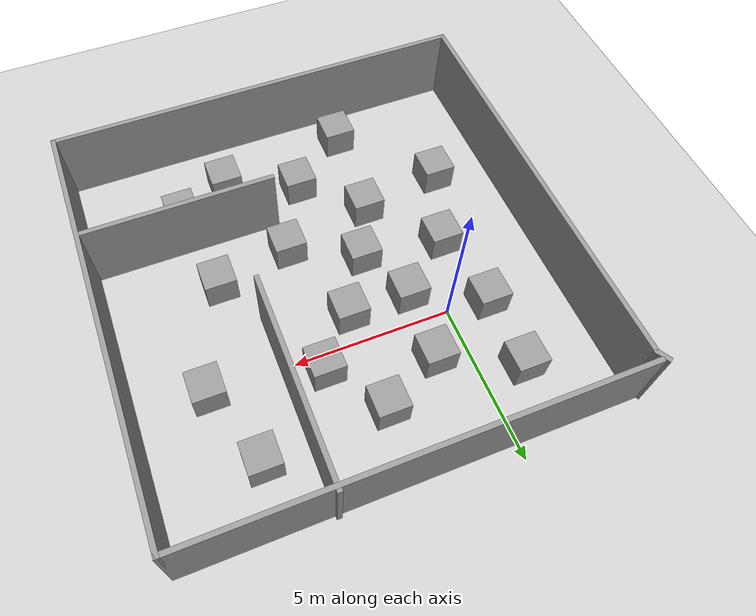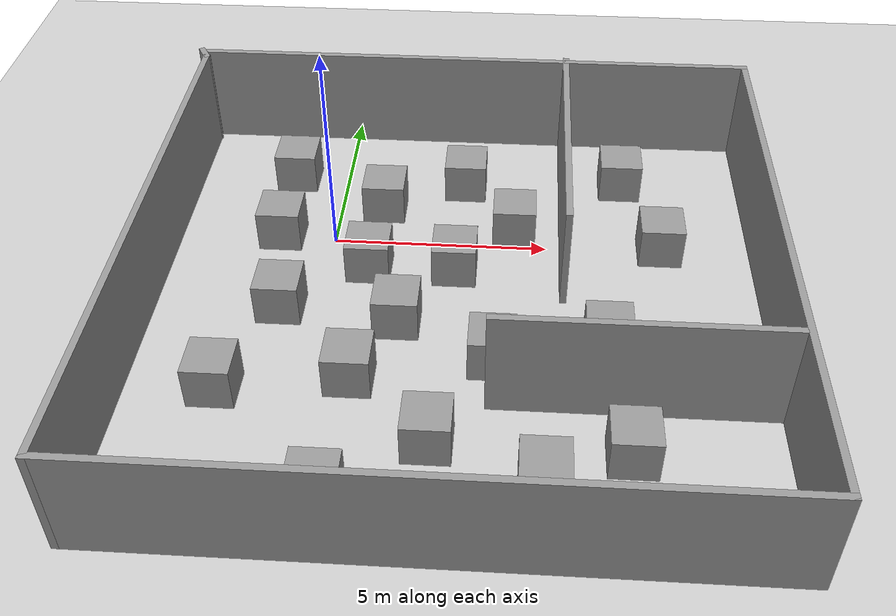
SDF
<sdf version="1.7">
 <world name="default">
  <light name="sun" type="directional">
   <pose>0 0 10 0 -0 0</pose>
   <diffuse>0.8 0.8 0.8 1</diffuse>
   <specular>0.2 0.2 0.2 1</specular>
   <attenuation>
    <range>1000</range>
    <constant>0.9</constant>
    <linear>0.01</linear>
    <quadratic>0.001</quadratic>
   </attenuation>
   <direction>-0.5 0.1 -0.9</direction>
   <spot><inner_angle>0</inner_angle><outer_angle>0</outer_angle><falloff>0</falloff></spot>
  </light>
  <model name="ground_plane">
   <static>1</static>
   <link name="link">
    <collision name="collision">
     <geometry><plane><normal>0 0 1</normal><size>100 100</size></plane></geometry>
     <surface><friction><ode><mu>100</mu><mu2>50</mu2></ode></friction></surface>
    </collision>
    <visual name="visual">
     <cast_shadows>0</cast_shadows>
     <geometry><plane><normal>0 0 1</normal><size>100 100</size></plane></geometry>
     <material>
      <script><uri>file://media/materials/scripts/gazebo.material</uri><name>Gazebo/Grey</name></script>
     </material>
    </visual>
   </link>
  </model>
  <gravity>0 0 -9.8</gravity>
  <magnetic_field>6e-06 2.3e-05 -4.2e-05</magnetic_field>
  <atmosphere type="adiabatic"/>
  <physics type="ode">
   <max_step_size>0.001</max_step_size>
   <real_time_factor>1</real_time_factor>
   <real_time_update_rate>1000</real_time_update_rate>
  </physics>
  <scene><ambient>0.4 0.4 0.4 1</ambient><background>0.7 0.7 0.7 1</background><shadows>1</shadows></scene>
  <spherical_coordinates>
   <surface_model>EARTH_WGS84</surface_model>
   <latitude_deg>0</latitude_deg>
   <longitude_deg>0</longitude_deg>
   <elevation>0</elevation>
   <heading_deg>0</heading_deg>
  </spherical_coordinates>
  <model name="maze">
   <pose>2.92862 -2.17768 0 0 -0 0</pose>
   <link name="Wall_10">
    <collision name="Wall_10_Collision">
     <geometry><box><size>13.25 0.15 2.5</size></box></geometry>
     <pose>0 0 1.25 0 -0 0</pose>
    </collision>
    <visual name="Wall_10_Visual">
     <pose>0 0 1.25 0 -0 0</pose>
     <geometry><box><size>13.25 0.15 2.5</size></box></geometry>
     <material>
      <script><uri>file://media/materials/scripts/gazebo.material</uri><name>Gazebo/Grey</name></script>
      <ambient>1 1 1 1</ambient>
     </material>
     <meta><layer>0</layer></meta>
    </visual>
    <pose>-6.69878 -0.1782 0 0 -0 1.5708</pose>
   </link>
   <link name="Wall_11">
    <collision name="Wall_11_Collision">
     <geometry><box><size>0.5 0.15 2.5</size></box></geometry>
     <pose>0 0 1.25 0 -0 0</pose>
    </collision>
    <visual name="Wall_11_Visual">
     <pose>0 0 1.25 0 -0 0</pose>
     <geometry><box><size>0.5 0.15 2.5</size></box></geometry>
     <material>
      <script><uri>file://media/materials/scripts/gazebo.material</uri><name>Gazebo/Grey</name></script>
      <ambient>1 1 1 1</ambient>
     </material>
     <meta><layer>0</layer></meta>
    </visual>
    <pose>-6.78627 6.52335 0 0 -0 2.0944</pose>
   </link>
   <link name="Wall_13">
    <collision name="Wall_13_Collision">
     <geometry><box><size>6.5 0.15 2.5</size></box></geometry>
     <pose>0 0 1.25 0 -0 0</pose>
    </collision>
    <visual name="Wall_13_Visual">
     <pose>0 0 1.25 0 -0 0</pose>
     <geometry><box><size>6.5 0.15 2.5</size></box></geometry>
     <material>
      <script><uri>file://media/materials/scripts/gazebo.material</uri><name>Gazebo/Grey</name></script>
      <ambient>1 1 1 1</ambient>
     </material>
     <meta><layer>0</layer></meta>
    </visual>
    <pose>2.45169 3.5532 0 0 -0 -1.5708</pose>
   </link>
   <link name="Wall_16">
    <collision name="Wall_16_Collision">
     <geometry><box><size>6 0.15 2.5</size></box></geometry>
     <pose>0 0 1.25 0 -0 0</pose>
    </collision>
    <visual name="Wall_16_Visual">
     <pose>0 0 1.25 0 -0 0</pose>
     <geometry><box><size>6 0.15 2.5</size></box></geometry>
     <material>
      <script><uri>file://media/materials/scripts/gazebo.material</uri><name>Gazebo/Grey</name></script>
      <ambient>1 1 1 1</ambient>
     </material>
     <meta><layer>0</layer></meta>
    </visual>
    <pose>3.83593 -2.90107 0 0 -0 3.14159</pose>
   </link>
   <link name="Wall_7">
    <collision name="Wall_7_Collision">
     <geometry><box><size>13.75 0.15 2.5</size></box></geometry>
     <pose>0 0 1.25 0 -0 0</pose>
    </collision>
    <visual name="Wall_7_Visual">
     <pose>0 0 1.25 0 -0 0</pose>
     <geometry><box><size>13.75 0.15 2.5</size></box></geometry>
     <material>
      <script><uri>file://media/materials/scripts/gazebo.material</uri><name>Gazebo/Grey</name></script>
      <ambient>1 1 1 1</ambient>
     </material>
     <meta><layer>0</layer></meta>
    </visual>
    <pose>0.101225 6.6218 0 0 -0 0</pose>
   </link>
   <link name="Wall_8">
    <collision name="Wall_8_Collision">
     <geometry><box><size>13.5 0.15 2.5</size></box></geometry>
     <pose>0 0 1.25 0 -0 0</pose>
    </collision>
    <visual name="Wall_8_Visual">
     <pose>0 0 1.25 0 -0 0</pose>
     <geometry><box><size>13.5 0.15 2.5</size></box></geometry>
     <material>
      <script><uri>file://media/materials/scripts/gazebo.material</uri><name>Gazebo/Grey</name></script>
      <ambient>1 1 1 1</ambient>
     </material>
     <meta><layer>0</layer></meta>
    </visual>
    <pose>6.90123 -0.0532 0 0 -0 -1.5708</pose>
   </link>
   <link name="Wall_9">
    <collision name="Wall_9_Collision">
     <geometry><box><size>13.75 0.15 2.5</size></box></geometry>
     <pose>0 0 1.25 0 -0 0</pose>
    </collision>
    <visual name="Wall_9_Visual">
     <pose>0 0 1.25 0 -0 0</pose>
     <geometry><box><size>13.75 0.15 2.5</size></box></geometry>
     <material>
      <script><uri>file://media/materials/scripts/gazebo.material</uri><name>Gazebo/Grey</name></script>
      <ambient>1 1 1 1</ambient>
     </material>
     <meta><layer>0</layer></meta>
    </visual>
    <pose>0.101225 -6.7282 0 0 -0 3.14159</pose>
   </link>
   <static>1</static>
  </model>
  <model name="unit_box">
   <pose>1.06233 1.29017 0.499995 0 1e-05 0</pose>
   <link name="link">
    <inertial>
     <mass>10</mass>
     <inertia>
      <ixx>0.166667</ixx>
      <ixy>0</ixy>
      <ixz>0</ixz>
      <iyy>0.166667</iyy>
      <iyz>0</iyz>
      <izz>0.166667</izz>
     </inertia>
    </inertial>
    <collision name="collision"><geometry><box><size>1 1 1</size></box></geometry></collision>
    <visual name="visual">
     <geometry><box><size>1 1 1</size></box></geometry>
     <material>
      <script><name>Gazebo/Grey</name><uri>file://media/materials/scripts/gazebo.material</uri></script>
     </material>
    </visual>
   </link>
  </model>
  <model name="unit_box_0">
   <pose>1.75455 -2.7656 0.499995 0 -1e-05 0</pose>
   <link name="link">
    <inertial>
     <mass>10</mass>
     <inertia>
      <ixx>0.166667</ixx>
      <ixy>0</ixy>
      <ixz>0</ixz>
      <iyy>0.166667</iyy>
      <iyz>0</iyz>
      <izz>0.166667</izz>
     </inertia>
    </inertial>
    <collision name="collision"><geometry><box><size>1 1 1</size></box></geometry></collision>
    <visual name="visual">
     <geometry><box><size>1 1 1</size></box></geometry>
     <material>
      <script><name>Gazebo/Grey</name><uri>file://media/materials/scripts/gazebo.material</uri></script>
     </material>
    </visual>
   </link>
  </model>
  <model name="unit_box_1">
   <pose>2.90182 -0.964119 0.499995 0 -1e-05 0</pose>
   <link name="link">
    <inertial>
     <mass>10</mass>
     <inertia>
      <ixx>0.166667</ixx>
      <ixy>0</ixy>
      <ixz>0</ixz>
      <iyy>0.166667</iyy>
      <iyz>0</iyz>
      <izz>0.166667</izz>
     </inertia>
    </inertial>
    <collision name="collision"><geometry><box><size>1 1 1</size></box></geometry></collision>
    <visual name="visual">
     <geometry><box><size>1 1 1</size></box></geometry>
     <material>
      <script><name>Gazebo/Grey</name><uri>file://media/materials/scripts/gazebo.material</uri></script>
     </material>
    </visual>
   </link>
  </model>
  <model name="unit_box_2">
   <pose>-1.25622 2.42374 0.499995 0 1e-05 0</pose>
   <link name="link">
    <inertial>
     <mass>10</mass>
     <inertia>
      <ixx>0.166667</ixx>
      <ixy>0</ixy>
      <ixz>0</ixz>
      <iyy>0.166667</iyy>
      <iyz>0</iyz>
      <izz>0.166667</izz>
     </inertia>
    </inertial>
    <collision name="collision"><geometry><box><size>1 1 1</size></box></geometry></collision>
    <visual name="visual">
     <geometry><box><size>1 1 1</size></box></geometry>
     <material>
      <script><name>Gazebo/Grey</name><uri>file://media/materials/scripts/gazebo.material</uri></script>
     </material>
    </visual>
   </link>
  </model>
  <model name="unit_box_3">
   <pose>0.940977 -4.51753 0.499995 0 -1e-05 0</pose>
   <link name="link">
    <inertial>
     <mass>10</mass>
     <inertia>
      <ixx>0.166667</ixx>
      <ixy>0</ixy>
      <ixz>0</ixz>
      <iyy>0.166667</iyy>
      <iyz>0</iyz>
      <izz>0.166667</izz>
     </inertia>
    </inertial>
    <collision name="collision"><geometry><box><size>1 1 1</size></box></geometry></collision>
    <visual name="visual">
     <geometry><box><size>1 1 1</size></box></geometry>
     <material>
      <script><name>Gazebo/Grey</name><uri>file://media/materials/scripts/gazebo.material</uri></script>
     </material>
    </visual>
   </link>
  </model>
  <model name="unit_box_4">
   <pose>-1.79002 -4.95829 0.499995 0 1e-05 0</pose>
   <link name="link">
    <inertial>
     <mass>10</mass>
     <inertia>
      <ixx>0.166667</ixx>
      <ixy>0</ixy>
      <ixz>0</ixz>
      <iyy>0.166667</iyy>
      <iyz>0</iyz>
      <izz>0.166667</izz>
     </inertia>
    </inertial>
    <collision name="collision"><geometry><box><size>1 1 1</size></box></geometry></collision>
    <visual name="visual">
     <geometry><box><size>1 1 1</size></box></geometry>
     <material>
      <script><name>Gazebo/Grey</name><uri>file://media/materials/scripts/gazebo.material</uri></script>
     </material>
    </visual>
   </link>
  </model>
  <model name="unit_box_5">
   <pose>0.727823 -7.68964 0.499995 -1e-05 0 0</pose>
   <link name="link">
    <inertial>
     <mass>10</mass>
     <inertia>
      <ixx>0.166667</ixx>
      <ixy>0</ixy>
      <ixz>0</ixz>
      <iyy>0.166667</iyy>
      <iyz>0</iyz>
      <izz>0.166667</izz>
     </inertia>
    </inertial>
    <collision name="collision"><geometry><box><size>1 1 1</size></box></geometry></collision>
    <visual name="visual">
     <geometry><box><size>1 1 1</size></box></geometry>
     <material>
      <script><name>Gazebo/Grey</name><uri>file://media/materials/scripts/gazebo.material</uri></script>
     </material>
    </visual>
   </link>
  </model>
  <model name="unit_box_6">
   <pose>6.80882 2.49878 0.499995 1e-05 -0 0</pose>
   <link name="link">
    <inertial>
     <mass>10</mass>
     <inertia>
      <ixx>0.166667</ixx>
      <ixy>0</ixy>
      <ixz>0</ixz>
      <iyy>0.166667</iyy>
      <iyz>0</iyz>
      <izz>0.166667</izz>
     </inertia>
    </inertial>
    <collision name="collision"><geometry><box><size>1 1 1</size></box></geometry></collision>
    <visual name="visual">
     <geometry><box><size>1 1 1</size></box></geometry>
     <material>
      <script><name>Gazebo/Grey</name><uri>file://media/materials/scripts/gazebo.material</uri></script>
     </material>
    </visual>
   </link>
  </model>
  <model name="unit_box_7">
   <pose>7.64222 0.016976 0.499995 0 1e-05 0</pose>
   <link name="link">
    <inertial>
     <mass>10</mass>
     <inertia>
      <ixx>0.166667</ixx>
      <ixy>0</ixy>
      <ixz>0</ixz>
      <iyy>0.166667</iyy>
      <iyz>0</iyz>
      <izz>0.166667</izz>
     </inertia>
    </inertial>
    <collision name="collision"><geometry><box><size>1 1 1</size></box></geometry></collision>
    <visual name="visual">
     <geometry><box><size>1 1 1</size></box></geometry>
     <material>
      <script><name>Gazebo/Grey</name><uri>file://media/materials/scripts/gazebo.material</uri></script>
     </material>
    </visual>
   </link>
  </model>
  <model name="unit_box_8">
   <pose>6.30567 -3.33697 0.499995 1e-05 -0 0</pose>
   <link name="link">
    <inertial>
     <mass>10</mass>
     <inertia>
      <ixx>0.166667</ixx>
      <ixy>0</ixy>
      <ixz>0</ixz>
      <iyy>0.166667</iyy>
      <iyz>0</iyz>
      <izz>0.166667</izz>
     </inertia>
    </inertial>
    <collision name="collision"><geometry><box><size>1 1 1</size></box></geometry></collision>
    <visual name="visual">
     <geometry><box><size>1 1 1</size></box></geometry>
     <material>
      <script><name>Gazebo/Grey</name><uri>file://media/materials/scripts/gazebo.material</uri></script>
     </material>
    </visual>
   </link>
  </model>
  <model name="unit_box_9">
   <pose>2.69483 -6.16784 0.499995 1e-05 -0 0</pose>
   <link name="link">
    <inertial>
     <mass>10</mass>
     <inertia>
      <ixx>0.166667</ixx>
      <ixy>0</ixy>
      <ixz>0</ixz>
      <iyy>0.166667</iyy>
      <iyz>0</iyz>
      <izz>0.166667</izz>
     </inertia>
    </inertial>
    <collision name="collision"><geometry><box><size>1 1 1</size></box></geometry></collision>
    <visual name="visual">
     <geometry><box><size>1 1 1</size></box></geometry>
     <material>
      <script><name>Gazebo/Grey</name><uri>file://media/materials/scripts/gazebo.material</uri></script>
     </material>
    </visual>
   </link>
  </model>
  <model name="unit_box_10">
   <pose>4.97518 -7.13786 0.499995 -1e-05 -0 -0</pose>
   <link name="link">
    <inertial>
     <mass>10</mass>
     <inertia>
      <ixx>0.166667</ixx>
      <ixy>0</ixy>
      <ixz>0</ixz>
      <iyy>0.166667</iyy>
      <iyz>0</iyz>
      <izz>0.166667</izz>
     </inertia>
    </inertial>
    <collision name="collision"><geometry><box><size>1 1 1</size></box></geometry></collision>
    <visual name="visual">
     <geometry><box><size>1 1 1</size></box></geometry>
     <material>
      <script><name>Gazebo/Grey</name><uri>file://media/materials/scripts/gazebo.material</uri></script>
     </material>
    </visual>
   </link>
  </model>
  <model name="unit_box_11">
   <pose>-0.864887 -2.43472 0.499995 1e-05 -0 0</pose>
   <link name="link">
    <inertial>
     <mass>10</mass>
     <inertia>
      <ixx>0.166667</ixx>
      <ixy>0</ixy>
      <ixz>0</ixz>
      <iyy>0.166667</iyy>
      <iyz>0</iyz>
      <izz>0.166667</izz>
     </inertia>
    </inertial>
    <collision name="collision"><geometry><box><size>1 1 1</size></box></geometry></collision>
    <visual name="visual">
     <geometry><box><size>1 1 1</size></box></geometry>
     <material>
      <script><name>Gazebo/Grey</name><uri>file://media/materials/scripts/gazebo.material</uri></script>
     </material>
    </visual>
   </link>
  </model>
  <model name="unit_box_12">
   <pose>-1.27029 0.097992 0.499995 1e-05 -0 0</pose>
   <link name="link">
    <inertial>
     <mass>10</mass>
     <inertia>
      <ixx>0.166667</ixx>
      <ixy>0</ixy>
      <ixz>0</ixz>
      <iyy>0.166667</iyy>
      <iyz>0</iyz>
      <izz>0.166667</izz>
     </inertia>
    </inertial>
    <collision name="collision"><geometry><box><size>1 1 1</size></box></geometry></collision>
    <visual name="visual">
     <geometry><box><size>1 1 1</size></box></geometry>
     <material>
      <script><name>Gazebo/Grey</name><uri>file://media/materials/scripts/gazebo.material</uri></script>
     </material>
    </visual>
   </link>
  </model>
  <model name="unit_box_13">
   <pose>0.932032 -0.963871 0.499995 -1e-05 -0 -0</pose>
   <link name="link">
    <inertial>
     <mass>10</mass>
     <inertia>
      <ixx>0.166667</ixx>
      <ixy>0</ixy>
      <ixz>0</ixz>
      <iyy>0.166667</iyy>
      <iyz>0</iyz>
      <izz>0.166667</izz>
     </inertia>
    </inertial>
    <collision name="collision"><geometry><box><size>1 1 1</size></box></geometry></collision>
    <visual name="visual">
     <geometry><box><size>1 1 1</size></box></geometry>
     <material>
      <script><name>Gazebo/Grey</name><uri>file://media/materials/scripts/gazebo.material</uri></script>
     </material>
    </visual>
   </link>
  </model>
  <model name="unit_box_14">
   <pose>3.86517 -3.85624 0.499995 0 1e-05 0</pose>
   <link name="link">
    <inertial>
     <mass>10</mass>
     <inertia>
      <ixx>0.166667</ixx>
      <ixy>0</ixy>
      <ixz>0</ixz>
      <iyy>0.166667</iyy>
      <iyz>0</iyz>
      <izz>0.166667</izz>
     </inertia>
    </inertial>
    <collision name="collision"><geometry><box><size>1 1 1</size></box></geometry></collision>
    <visual name="visual">
     <geometry><box><size>1 1 1</size></box></geometry>
     <material>
      <script><name>Gazebo/Grey</name><uri>file://media/materials/scripts/gazebo.material</uri></script>
     </material>
    </visual>
   </link>
  </model>
  <model name="unit_box_15">
   <pose>6.676 -6.28011 0.499995 0 1e-05 0</pose>
   <link name="link">
    <inertial>
     <mass>10</mass>
     <inertia>
      <ixx>0.166667</ixx>
      <ixy>0</ixy>
      <ixz>0</ixz>
      <iyy>0.166667</iyy>
      <iyz>0</iyz>
      <izz>0.166667</izz>
     </inertia>
    </inertial>
    <collision name="collision"><geometry><box><size>1 1 1</size></box></geometry></collision>
    <visual name="visual">
     <geometry><box><size>1 1 1</size></box></geometry>
     <material>
      <script><name>Gazebo/Grey</name><uri>file://media/materials/scripts/gazebo.material</uri></script>
     </material>
    </visual>
   </link>
  </model>
  <model name="unit_box_16">
   <pose>2.98924 2.25431 0.499995 -1e-05 -0 0</pose>
   <link name="link">
    <inertial>
     <mass>10</mass>
     <inertia>
      <ixx>0.166667</ixx>
      <ixy>0</ixy>
      <ixz>0</ixz>
      <iyy>0.166667</iyy>
      <iyz>0</iyz>
      <izz>0.166667</izz>
     </inertia>
    </inertial>
    <collision name="collision"><geometry><box><size>1 1 1</size></box></geometry></collision>
    <visual name="visual">
     <geometry><box><size>1 1 1</size></box></geometry>
     <material>
      <script><name>Gazebo/Grey</name><uri>file://media/materials/scripts/gazebo.material</uri></script>
     </material>
    </visual>
   </link>
  </model>
  <model name="unit_box_17">
   <pose>4.23174 0.502668 0.5 0 -0 0</pose>
   <link name="link">
    <inertial>
     <mass>10</mass>
     <inertia>
      <ixx>0.166667</ixx>
      <ixy>0</ixy>
      <ixz>0</ixz>
      <iyy>0.166667</iyy>
      <iyz>0</iyz>
      <izz>0.166667</izz>
     </inertia>
    </inertial>
    <collision name="collision"><geometry><box><size>1 1 1</size></box></geometry></collision>
    <visual name="visual">
     <geometry><box><size>1 1 1</size></box></geometry>
     <material>
      <script><name>Gazebo/Grey</name><uri>file://media/materials/scripts/gazebo.material</uri></script>
     </material>
    </visual>
   </link>
  </model>
 </world>
</sdf>
